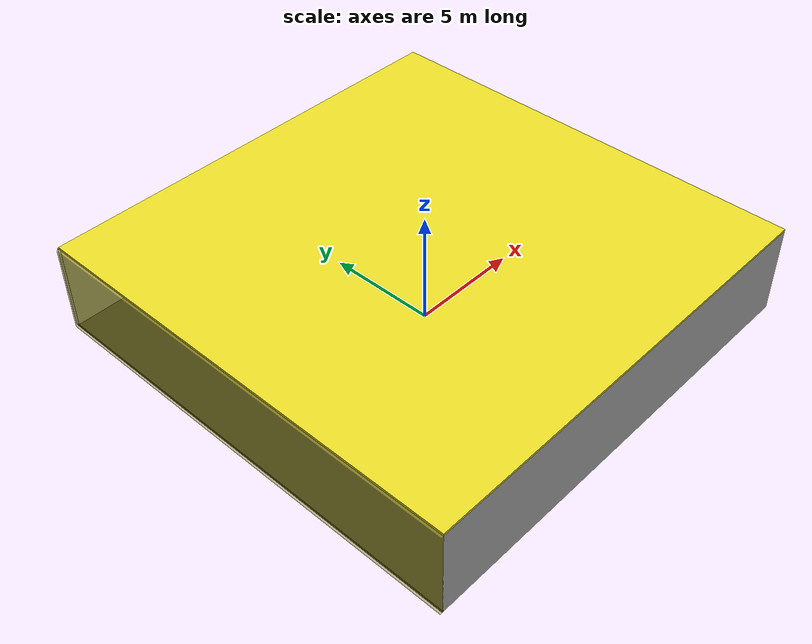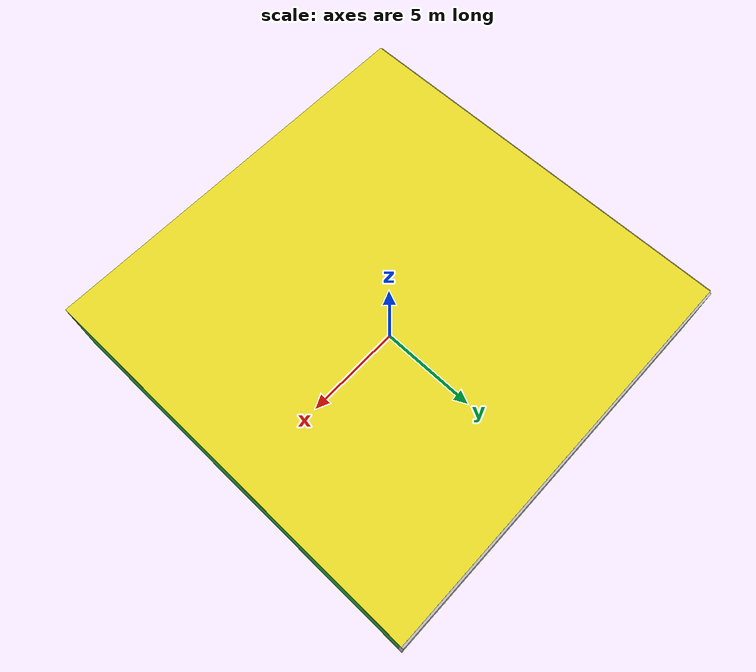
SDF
<sdf version="1.4">
 <world name="default">
  <physics type="ode">
   <max_step_size>0.001</max_step_size>
   <real_time_factor>1</real_time_factor>
   <real_time_update_rate>1000</real_time_update_rate>
   <gravity>0 0 -9.8</gravity>
  </physics>
  <scene><ambient>0.4 0.4 0.4 1</ambient><background>0.7 0.7 0.7 1</background><shadows>1</shadows></scene>
  <model name="Surrounding">
   <static>1</static>
   <link name="Ceiling">
    <collision name="Ceiling_Collision"><geometry><box><size>20 20 0.1</size></box></geometry></collision>
    <visual name="Ceiling_Visual">
     <geometry><box><size>20 20 0.1</size></box></geometry>
     <material>
      <script><uri>file://media/materials/scripts/gazebo.material</uri><name>Gazebo/Yellow</name></script>
     </material>
    </visual>
    <pose>0 0 4.05 0 0 0</pose>
   </link>
   <link name="Wall_South">
    <collision name="Wall_South_Collision">
     <geometry><box><size>20 0 4</size></box></geometry>
     <pose>0 0 2 0 -0 0</pose>
    </collision>
    <visual name="Wall_South_Visual">
     <pose>0 0 2 0 -0 0</pose>
     <geometry><box><size>20 0 4</size></box></geometry>
     <material>
      <script><uri>file://media/materials/scripts/gazebo.material</uri><name>Gazebo/PioneerBody</name></script>
     </material>
    </visual>
    <velocity_decay><linear>0</linear><angular>0</angular></velocity_decay>
    <pose>0 -10 0 0 -0 0</pose>
   </link>
   <link name="Wall_East">
    <collision name="Wall_21_Collision">
     <geometry><box><size>20 0 4</size></box></geometry>
     <pose>0 0 2 0 -0 0</pose>
    </collision>
    <visual name="Wall_21_Visual">
     <pose>0 0 2 0 -0 0</pose>
     <geometry><box><size>20 0 4</size></box></geometry>
     <material>
      <script><uri>file://media/materials/scripts/gazebo.material</uri><name>Gazebo/Green</name></script>
     </material>
    </visual>
    <velocity_decay><linear>0</linear><angular>0</angular></velocity_decay>
    <pose>10 0 0 0 -0 1.5708</pose>
   </link>
   <link name="Wall_North">
    <collision name="Wall_22_Collision">
     <geometry><box><size>20 0.2 4</size></box></geometry>
     <pose>0 0 2 0 -0 0</pose>
    </collision>
    <visual name="Wall_22_Visual">
     <pose>0 0 2 0 -0 0</pose>
     <geometry><box><size>20 0.2 4</size></box></geometry>
     <material>
      <script><uri>file://media/materials/scripts/gazebo.material</uri><name>Gazebo/LightOff</name></script>
     </material>
    </visual>
    <velocity_decay><linear>0</linear><angular>0</angular></velocity_decay>
    <pose>0 10 0 0 -0 0</pose>
   </link>
   <link name="Wall_West">
    <collision name="Wall_23_Collision">
     <geometry><box><size>20 0.2 4</size></box></geometry>
     <pose>0 0 2 0 -0 0</pose>
    </collision>
    <visual name="Wall_23_Visual">
     <pose>0 0 2 0 -0 0</pose>
     <geometry><box><size>20 0.2 4</size></box></geometry>
     <material>
      <script>
       <uri>file://media/materials/scripts/gazebo.material</uri>
       <name>Gazebo/YellowTransparent</name>
      </script>
     </material>
    </visual>
    <velocity_decay><linear>0</linear><angular>0</angular></velocity_decay>
    <pose>-10 0 0 0 0 -1.5708</pose>
   </link>
   <link name="Ground_link">
    <collision name="collision">
     <pose>0 0 .05 0 -0 0</pose>
     <geometry><box><size>20 20 0.1</size></box></geometry>
    </collision>
    <visual name="visual">
     <pose>0 0 .05 0 -0 0</pose>
     <geometry><box><size>20 20 0.1</size></box></geometry>
     <material>
      <script><uri>file://media/materials/scripts/gazebo.material</uri><name>Gazebo/Black</name></script>
     </material>
    </visual>
   </link>
   <static>1</static>
  </model>
  <spherical_coordinates>
   <surface_model>EARTH_WGS84</surface_model>
   <latitude_deg>0</latitude_deg>
   <longitude_deg>0</longitude_deg>
   <elevation>0</elevation>
   <heading_deg>0</heading_deg>
  </spherical_coordinates>
  <light name="lightball_0" type="diffuse">
   <diffuse>0.8 0.8 0.8 1</diffuse>
   <specular>0.2 0.2 0.2 1</specular>
   <attenuation>
    <range>100</range>
    <constant>0.7</constant>
    <linear>0.01</linear>
    <quadratic>0.001</quadratic>
   </attenuation>
   <direction>-0.5 0.1 -0.9</direction>
   <pose>-6.9603155969 5.83687744599 2.01755400924 0 0 0</pose>
  </light>
  <light name="lightball_1" type="diffuse">
   <diffuse>0.8 0.8 0.8 1</diffuse>
   <specular>0.2 0.2 0.2 1</specular>
   <attenuation>
    <range>100</range>
    <constant>0.7</constant>
    <linear>0.01</linear>
    <quadratic>0.001</quadratic>
   </attenuation>
   <direction>-0.5 0.1 -0.9</direction>
   <pose>-8.10853448396 -8.09986632227 3.22437343935 0 0 0</pose>
  </light>
  <light name="lightball_2" type="diffuse">
   <diffuse>0.8 0.8 0.8 1</diffuse>
   <specular>0.2 0.2 0.2 1</specular>
   <attenuation>
    <range>100</range>
    <constant>0.7</constant>
    <linear>0.01</linear>
    <quadratic>0.001</quadratic>
   </attenuation>
   <direction>-0.5 0.1 -0.9</direction>
   <pose>3.14346542582 5.05757687166 1.69522317858 0 0 0</pose>
  </light>
  <light name="lightball_3" type="diffuse">
   <diffuse>0.8 0.8 0.8 1</diffuse>
   <specular>0.2 0.2 0.2 1</specular>
   <attenuation>
    <range>100</range>
    <constant>0.7</constant>
    <linear>0.01</linear>
    <quadratic>0.001</quadratic>
   </attenuation>
   <direction>-0.5 0.1 -0.9</direction>
   <pose>6.88851636989 -6.89721521441 3.00947836455 0 0 0</pose>
  </light>
  <light name="lightball_4" type="diffuse">
   <diffuse>0.8 0.8 0.8 1</diffuse>
   <specular>0.2 0.2 0.2 1</specular>
   <attenuation>
    <range>100</range>
    <constant>0.7</constant>
    <linear>0.01</linear>
    <quadratic>0.001</quadratic>
   </attenuation>
   <direction>-0.5 0.1 -0.9</direction>
   <pose>7.47364374394 7.87036850144 3.65208932847 0 0 0</pose>
  </light>
  <light name="lightball_5" type="diffuse">
   <diffuse>0.8 0.8 0.8 1</diffuse>
   <specular>0.2 0.2 0.2 1</specular>
   <attenuation>
    <range>100</range>
    <constant>0.7</constant>
    <linear>0.01</linear>
    <quadratic>0.001</quadratic>
   </attenuation>
   <direction>-0.5 0.1 -0.9</direction>
   <pose>6.95966810941 8.25611301015 2.29154714319 0 0 0</pose>
  </light>
  <light name="lightball_6" type="diffuse">
   <diffuse>0.8 0.8 0.8 1</diffuse>
   <specular>0.2 0.2 0.2 1</specular>
   <attenuation>
    <range>100</range>
    <constant>0.7</constant>
    <linear>0.01</linear>
    <quadratic>0.001</quadratic>
   </attenuation>
   <direction>-0.5 0.1 -0.9</direction>
   <pose>5.38304379676 -2.57460959429 1.65327280455 0 0 0</pose>
  </light>
  <light name="lightball_7" type="diffuse">
   <diffuse>0.8 0.8 0.8 1</diffuse>
   <specular>0.2 0.2 0.2 1</specular>
   <attenuation>
    <range>100</range>
    <constant>0.7</constant>
    <linear>0.01</linear>
    <quadratic>0.001</quadratic>
   </attenuation>
   <direction>-0.5 0.1 -0.9</direction>
   <pose>-0.064256025337 2.78409654278 1.26629928784 0 0 0</pose>
  </light>
  <light name="lightball_8" type="diffuse">
   <diffuse>0.8 0.8 0.8 1</diffuse>
   <specular>0.2 0.2 0.2 1</specular>
   <attenuation>
    <range>100</range>
    <constant>0.7</constant>
    <linear>0.01</linear>
    <quadratic>0.001</quadratic>
   </attenuation>
   <direction>-0.5 0.1 -0.9</direction>
   <pose>5.37800933434 6.954908897 2.45683183156 0 0 0</pose>
  </light>
  <include><uri>model://cabinet</uri><pose>-0.824598859325 0.305725349683 0 0 0 3.07941963432</pose></include>
  <include>
   <uri>model://robocup_3Dsim_goal</uri>
   <pose>2.44718468489 0.465292274429 0 0 0 2.08229744939</pose>
  </include>
  <include>
   <uri>model://robocup_3Dsim_goal</uri>
   <pose>4.42707857093 -2.58566203727 0 0 0 2.62019223411</pose>
  </include>
 </world>
</sdf>

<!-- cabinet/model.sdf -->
<sdf version="1.5">
  <model name="cabinet">
    <static>true</static>
    <link name="cabinet_bottom_plate">
      <inertial>
        <pose>0 0 -1 0 0 0</pose>
        <inertia>
          <ixx>2.050000</ixx>
          <ixy>0</ixy>
          <ixz>0</ixz>
          <iyy>2.050000</iyy>
          <iyz>0</iyz>
          <izz>2.050000</izz>
        </inertia>
        <mass>25.000000</mass>
      </inertial>
      <collision name="cabinet_bottom_plate_geom">
        <pose>0 0 0.010000 0 0 0</pose>
        <geometry>
          <box>
            <size>0.450000 0.450000 0.020000</size>
          </box>
        </geometry>
      </collision>
      <visual name="cabinet_bottom_plate_geom_visual">
        <pose>0 0 0.010000 0 0 0</pose>
        <geometry>
          <box>
            <size>0.450000 0.450000 0.020000</size>
          </box>
        </geometry>
        <material>
          <script>
            <uri>model://media/materials/scripts/gazebo.material</uri>
            <name>Gazebo/Wood</name>
          </script>
        </material>
      </visual>
      <collision name="cabinet_bottom_plate_geom_cabinet_back_plate">
        <pose>0.235000 0 0.510000 0 0 0</pose>
        <geometry>
          <box>
            <size>0.020000 0.450000 1.020000</size>
          </box>
        </geometry>
      </collision>
      <visual name="cabinet_bottom_plate_geom_cabinet_back_plate_visual">
        <pose>0.235000 0 0.510000 0 0 0</pose>
        <geometry>
          <box>
            <size>0.020000 0.450000 1.020000</size>
          </box>
        </geometry>
        <material>
          <script>
            <uri>model://media/materials/scripts/gazebo.material</uri>
            <name>Gazebo/Wood</name>
          </script>
        </material>
      </visual>
      <collision name="cabinet_bottom_plate_geom_cabinet_left_plate">
        <pose>0 0.235000 0.510000 0 0 0</pose>
        <geometry>
          <box>
            <size>0.450000 0.020000 1.020000</size>
          </box>
        </geometry>
      </collision>
      <visual name="cabinet_bottom_plate_geom_cabinet_left_plate_visual">
        <pose>0 0.235000 0.510000 0 0 0</pose>
        <geometry>
          <box>
            <size>0.450000 0.020000 1.020000</size>
          </box>
        </geometry>
        <material>
          <script>
            <uri>model://media/materials/scripts/gazebo.material</uri>
            <name>Gazebo/Wood</name>
          </script>
        </material>
      </visual>
      <collision name="cabinet_bottom_plate_geom_cabinet_middle_plate">
        <pose>0 0 0.510000 0 0 0</pose>
        <geometry>
          <box>
            <size>0.450000 0.450000 0.020000</size>
          </box>
        </geometry>
      </collision>
      <visual name="cabinet_bottom_plate_geom_cabinet_middle_plate_visual">
        <pose>0 0 0.510000 0 0 0</pose>
        <geometry>
          <box>
            <size>0.450000 0.450000 0.020000</size>
          </box>
        </geometry>
        <material>
          <script>
            <uri>model://media/materials/scripts/gazebo.material</uri>
            <name>Gazebo/Wood</name>
          </script>
        </material>
      </visual>
      <collision name="cabinet_bottom_plate_geom_cabinet_right_plate">
        <pose>0 -0.235000 0.510000 0 0 0</pose>
        <geometry>
          <box>
            <size>0.450000 0.020000 1.020000</size>
          </box>
        </geometry>
      </collision>
      <visual name="cabinet_bottom_plate_geom_cabinet_right_plate_visual">
        <pose>0 -0.235000 0.510000 0 0 0</pose>
        <geometry>
          <box>
            <size>0.450000 0.020000 1.020000</size>
          </box>
        </geometry>
        <material>
          <script>
            <uri>model://media/materials/scripts/gazebo.material</uri>
            <name>Gazebo/Wood</name>
          </script>
        </material>
      </visual>
      <collision name="cabinet_bottom_plate_geom_cabinet_top_plate">
        <pose>0 0 1.010000 0 0 0</pose>
        <geometry>
          <box>
            <size>0.450000 0.450000 0.020000</size>
          </box>
        </geometry>
      </collision>
      <visual name="cabinet_bottom_plate_geom_cabinet_top_plate_visual">
        <pose>0 0 1.010000 0 0 0</pose>
        <geometry>
          <box>
            <size>0.450000 0.450000 0.020000</size>
          </box>
        </geometry>
        <material>
          <script>
            <uri>model://media/materials/scripts/gazebo.material</uri>
            <name>Gazebo/Wood</name>
          </script>
        </material>
      </visual>
    </link>
  </model>
</sdf>

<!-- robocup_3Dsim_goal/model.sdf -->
<sdf version="1.5">
  <model name="robocup_3d_goal">
    <static>true</static>
    <link name="left_post">
      <pose>0 1.05 0.45 0 0 0</pose>
      <collision name="collision">
        <geometry>
          <cylinder>
            <radius>0.05</radius>
            <length>0.9</length>
          </cylinder>
        </geometry>
      </collision>
      <visual name="visual">
        <geometry>
          <cylinder>
            <radius>0.05</radius>
            <length>0.9</length>
          </cylinder>
        </geometry>
        <material>
          <script>
            <uri>file://media/materials/scripts/gazebo.material</uri>
            <name>Gazebo/ZincYellow</name>
          </script>
        </material>
      </visual>
    </link>
    <link name="left_support_horiz_lower">
      <pose>0.30 1.05 0.01 0 0 0</pose>
      <collision name="collision">
        <geometry>
          <box>
            <size>0.50 0.02 0.02</size>
          </box>
        </geometry>
      </collision>
      <visual name="visual">
        <geometry>
          <box>
            <size>0.50 0.02 0.02</size>
          </box>
        </geometry>
        <material>
          <script>
            <uri>file://media/materials/scripts/gazebo.material</uri>
            <name>Gazebo/White</name>
          </script>
        </material>
      </visual>
    </link>
    <link name="left_support_horiz_upper">
      <pose>0.30 1.05 0.79 0 0 0</pose>
      <collision name="collision">
        <geometry>
          <box>
            <size>0.50 0.02 0.02</size>
          </box>
        </geometry>
      </collision>
      <visual name="visual">
        <geometry>
          <box>
            <size>0.50 0.02 0.02</size>
          </box>
        </geometry>
        <material>
          <script>
            <uri>file://media/materials/scripts/gazebo.material</uri>
            <name>Gazebo/White</name>
          </script>
        </material>
      </visual>
    </link>
    <link name="left_support_vertical">
      <pose>0.56 1.05 0.4 0 1.5708 0</pose>
      <collision name="collision">
        <geometry>
          <box>
            <size>0.80 0.02 0.02</size>
          </box>
        </geometry>
      </collision>
      <visual name="visual">
        <geometry>
          <box>
            <size>0.80 0.02 0.02</size>
          </box>
        </geometry>
        <material>
          <script>
            <uri>file://media/materials/scripts/gazebo.material</uri>
            <name>Gazebo/White</name>
          </script>
        </material>
      </visual>
    </link>
    <link name="right_support_horiz_lower">
      <pose>0.30 -1.05 0.01 0 0 0</pose>
      <collision name="collision">
        <geometry>
          <box>
            <size>0.50 0.02 0.02</size>
          </box>
        </geometry>
      </collision>
      <visual name="visual">
        <geometry>
          <box>
            <size>0.50 0.02 0.02</size>
          </box>
        </geometry>
        <material>
          <script>
            <uri>file://media/materials/scripts/gazebo.material</uri>
            <name>Gazebo/White</name>
          </script>
        </material>
      </visual>
    </link>
    <link name="right_support_horiz_upper">
      <pose>0.30 -1.05 0.79 0 0 0</pose>
      <collision name="collision">
        <geometry>
          <box>
            <size>0.50 0.02 0.02</size>
          </box>
        </geometry>
      </collision>
      <visual name="visual">
        <geometry>
          <box>
            <size>0.50 0.02 0.02</size>
          </box>
        </geometry>
        <material>
          <script>
            <uri>file://media/materials/scripts/gazebo.material</uri>
            <name>Gazebo/White</name>
          </script>
        </material>
      </visual>
    </link>
    <link name="right_support_vertical">
      <pose>0.56 -1.05 0.4 0 1.5708 0</pose>
      <collision name="collision">
        <geometry>
          <box>
            <size>0.80 0.02 0.02</size>
          </box>
        </geometry>
      </collision>
      <visual name="visual">
        <geometry>
          <box>
            <size>0.80 0.02 0.02</size>
          </box>
        </geometry>
        <material>
          <script>
            <uri>file://media/materials/scripts/gazebo.material</uri>
            <name>Gazebo/White</name>
          </script>
        </material>
      </visual>
    </link>
    <link name="center_support_horiz_lower">
      <pose>0.56 0 0.01 0 1.5708 0</pose>
      <collision name="collision">
        <geometry>
          <box>
            <size>0.02 2.08 0.02</size>
          </box>
        </geometry>
      </collision>
      <visual name="visual">
        <geometry>
          <box>
            <size>0.02 2.08 0.02</size>
          </box>
        </geometry>
        <material>
          <script>
            <uri>file://media/materials/scripts/gazebo.material</uri>
            <name>Gazebo/White</name>
          </script>
        </material>
      </visual>
    </link>
    <link name="center_support_horiz_upper">
      <pose>0.56 0 0.79 0 1.5708 0</pose>
      <collision name="collision">
        <geometry>
          <box>
            <size>0.02 2.08 0.02</size>
          </box>
        </geometry>
      </collision>
      <visual name="visual">
        <geometry>
          <box>
            <size>0.02 2.08 0.02</size>
          </box>
        </geometry>
        <material>
          <script>
            <uri>file://media/materials/scripts/gazebo.material</uri>
            <name>Gazebo/White</name>
          </script>
        </material>
      </visual>
    </link>
    <link name="right_post">
      <pose>0 -1.05 0.45 0 0 0</pose>
      <collision name="collision">
        <geometry>
          <cylinder>
            <radius>0.05</radius>
            <length>0.9</length>
          </cylinder>
        </geometry>
      </collision>
      <visual name="visual">
        <geometry>
          <cylinder>
            <radius>0.05</radius>
            <length>0.9</length>
          </cylinder>
        </geometry>
        <material>
          <script>
            <uri>file://media/materials/scripts/gazebo.material</uri>
            <name>Gazebo/ZincYellow</name>
          </script>
        </material>
      </visual>
    </link>
    <link name="crossbar">
      <pose>0 0 0.85 1.57 1.57 0</pose>
      <collision name="collision">
        <geometry>
          <cylinder>
            <radius>0.05</radius>
            <length>2.0</length>
          </cylinder>
        </geometry>
      </collision>
      <visual name="visual">
        <geometry>
          <cylinder>
            <radius>0.05</radius>
            <length>2.0</length>
          </cylinder>
        </geometry>
        <material>
          <script>
            <uri>file://media/materials/scripts/gazebo.material</uri>
            <name>Gazebo/ZincYellow</name>
          </script>
        </material>
      </visual>
    </link>
    <link name="center_net">
      <pose>0.56 0 0.40 0 0 0</pose>
      <collision name="collision">
        <geometry>
          <box>
            <size>0.01 2.1 0.80</size>
          </box>
        </geometry>
      </collision>
      <visual name="visual">
        <geometry>
          <box>
            <size>0.01 2.1 0.80</size>
          </box>
        </geometry>
        <material>
          <script>
            <uri>model://../model_source/models/robocup09_spl_field/materials/scripts/</uri>
            <uri>model://../model_source/models/robocup09_spl_field/materials/textures/</uri>
            <name>RoboCup/Net</name>
          </script>
        </material>
      </visual>
    </link>
    <link name="left_net">
      <pose>0.30 1.05 0.40 0 0 0</pose>
      <collision name="collision">
        <geometry>
          <box>
            <size>0.50 0.01 0.76</size>
          </box>
        </geometry>
      </collision>
      <visual name="visual">
        <geometry>
          <box>
            <size>0.50 0.01 0.76</size>
          </box>
        </geometry>
        <material>
          <script>
            <uri>model://../model_source/models/robocup09_spl_field/materials/scripts/</uri>
            <uri>model://../model_source/models/robocup09_spl_field/materials/textures/</uri>
            <name>RoboCup/Net</name>
          </script>
        </material>
      </visual>
    </link>
    <link name="right_net">
      <pose>0.30 -1.05 0.40 0 0 0</pose>
      <collision name="collision">
        <geometry>
          <box>
            <size>0.50 0.01 0.76</size>
          </box>
        </geometry>
      </collision>
      <visual name="visual">
        <geometry>
          <box>
            <size>0.50 0.01 0.76</size>
          </box>
        </geometry>
        <material>
          <script>
            <uri>model://../model_source/models/robocup09_spl_field/materials/scripts/</uri>
            <uri>model://../model_source/models/robocup09_spl_field/materials/textures/</uri>
            <name>RoboCup/Net</name>
          </script>
        </material>
      </visual>
    </link>
  </model>
</sdf>
